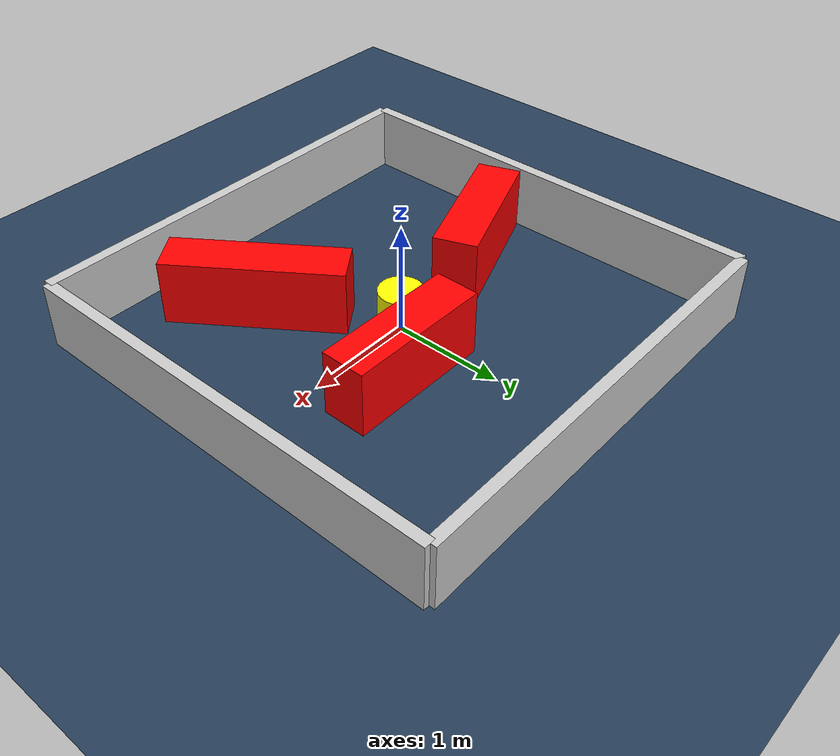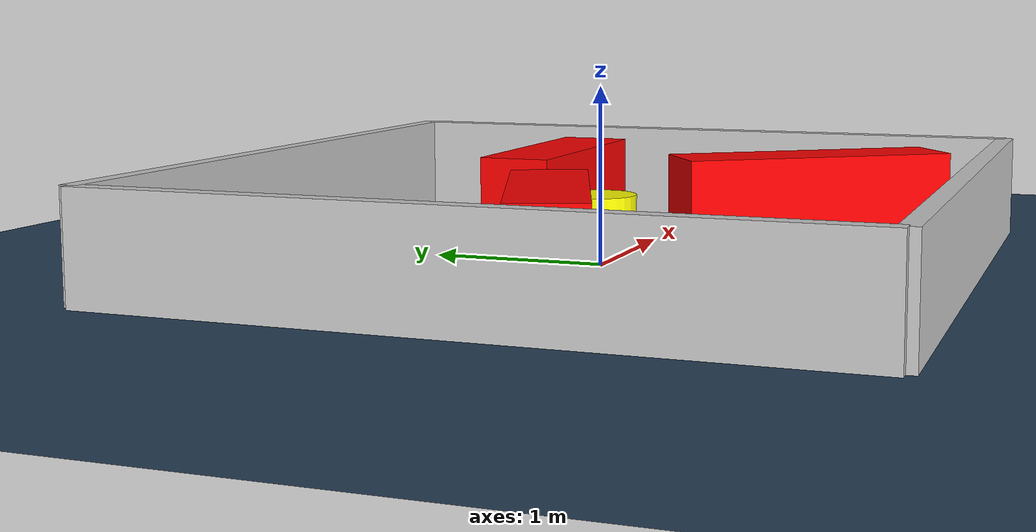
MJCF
<?xml version="1.0" ?>
<mujoco model="generated_environment">
  <option timestep="0.01" integrator="RK4" cone="elliptic"/>
  <default>
    <geom density="1"/>
  </default>
  <asset>
    <texture builtin="gradient" height="3072" rgb1="0.3 0.5 0.7" rgb2="0 0 0" type="skybox" width="512"/>
    <texture builtin="checker" height="300" mark="edge" markrgb="0.8 0.8 0.8" name="groundplane" rgb1="0.2 0.3 0.4" rgb2="0.1 0.2 0.3" type="2d" width="300"/>
    <material name="groundplane" reflectance="0.2" texrepeat="5 5" texture="groundplane" texuniform="true"/>
    <material name="robot" rgba="0.0 1.0 0.0 1"/>
  </asset>
  <worldbody>
    <light dir="0 0 -1" directional="true" pos="0 0 1.5"/>
    <geom condim="4" friction="1.0 0.005 0.001" material="groundplane" name="floor" size="0 0 0.05" type="plane"/>
    <body name="walls">
      <geom name="wall_1" condim="4" pos="-2.0 0.0 0.3" rgba="0.800000011920929 0.800000011920929 0.800000011920929 1.0" size="0.05 2.0 0.3" type="box"/>
      <geom name="wall_2" condim="4" pos="2.0 0.0 0.3" rgba="0.800000011920929 0.800000011920929 0.800000011920929 1.0" size="0.05 2.0 0.3" type="box"/>
      <geom name="wall_3" condim="4" pos="0.0 -2.0 0.3" rgba="0.800000011920929 0.800000011920929 0.800000011920929 1.0" size="2.0 0.05 0.3" type="box"/>
      <geom name="wall_4" condim="4" pos="0.0 2.0 0.3" rgba="0.800000011920929 0.800000011920929 0.800000011920929 1.0" size="2.0 0.05 0.3" type="box"/>
    </body>
    <body name="robot">
      <joint name="joint_x" type="slide" pos="0 0 0" axis="1 0 0"/>
      <joint name="joint_y" type="slide" pos="0 0 0" axis="0 1 0"/>
      <geom name="robot" type="sphere" pos="0.3 0.0 0.2" size="0.05" mass="5." friction="1.0 0.005 0.0001" condim="4" rgba="0.5 0.5 0.5 1.0"/>
      <site name="sensor_ball"/>
    </body>
    <body name="obstacle_movable_1">
      <geom name="obstacle_movable_1" condim="4" pos="0.0 0.0 0.2" euler="0 0 0.0" friction="1.0 0.005 0.001" rgba="1.0 1.0 0.0 1.0" size="0.2 0.2 0.0" type="cylinder" mass="0.1"/>
      <joint type="free"/>
    </body>
    <body name="obstacle_2_static">
      <geom name="obstacle_2_static" condim="4" pos="0.4954927147187458 0.4507166608329778 0.3" euler="0 0 359.6526104844191" friction="1.0 0.005 0.001" rgba="1 0 0 1" size="0.6642262500501709 0.2 0.3" type="box"/>
    </body>
    <body name="obstacle_3_static">
      <geom name="obstacle_3_static" condim="4" pos="-1.2262764506036785 -0.16598656365347408 0.3" euler="0 0 200.7953056846156" friction="1.0 0.005 0.001" rgba="1 0 0 1" size="0.663288378768906 0.2 0.3" type="box"/>
    </body>
    <body name="obstacle_4_static">
      <geom name="obstacle_4_static" condim="4" pos="0.6459258084038291 -1.0395544280526379 0.3" euler="0 0 305.31466416074255" friction="1.0 0.005 0.001" rgba="1 0 0 1" size="0.784284730725167 0.2 0.3" type="box"/>
    </body>
  </worldbody>
  <actuator>
    <motor name="actuator_x" joint="joint_x" gear="1" ctrlrange="-1 1"/>
    <motor name="actuator_y" joint="joint_y" gear="1" ctrlrange="-1 1"/>
  </actuator>
</mujoco>
